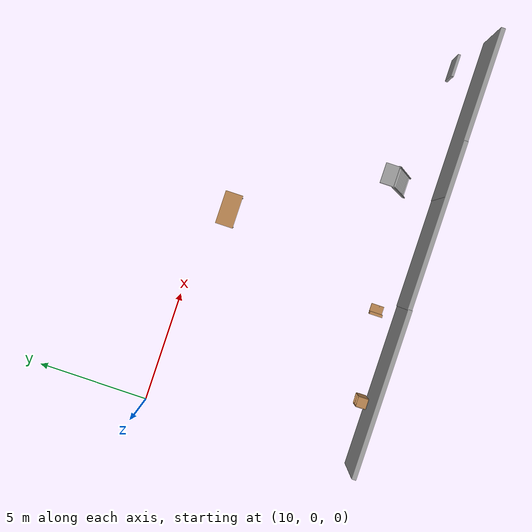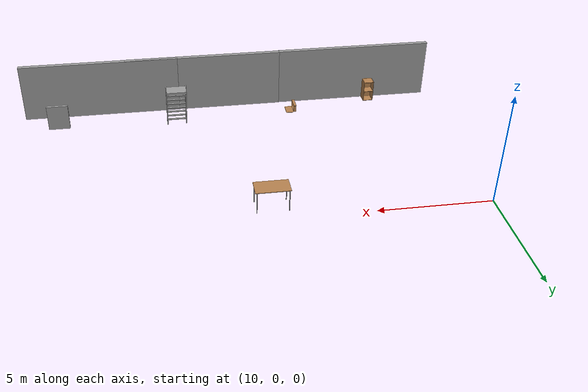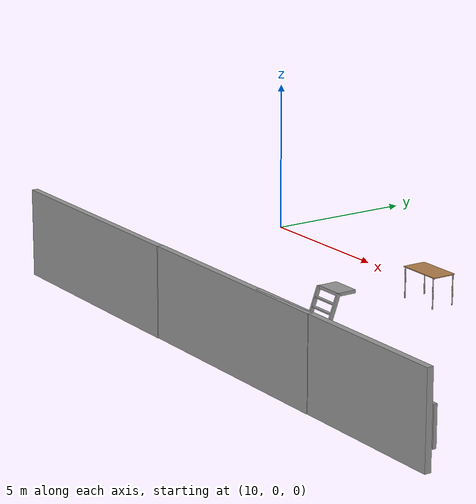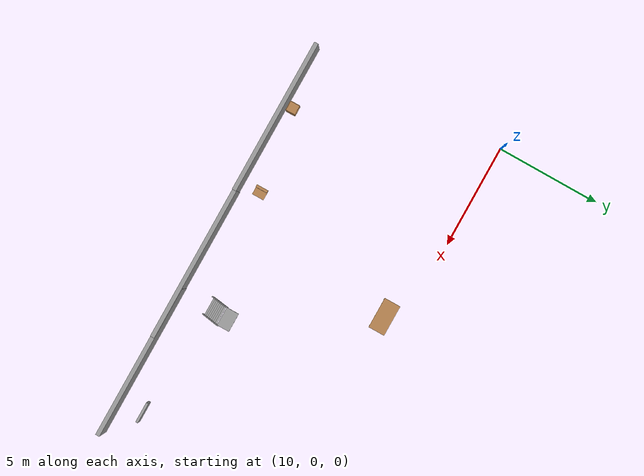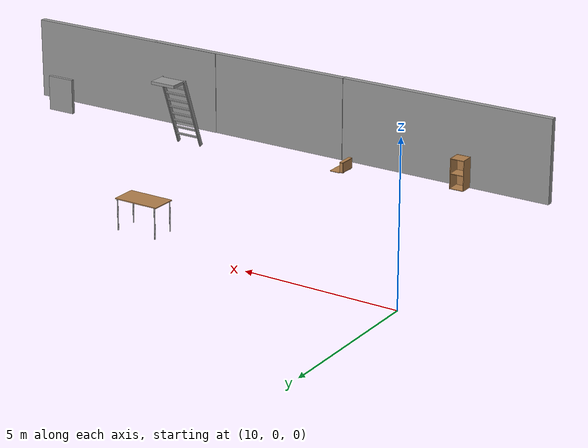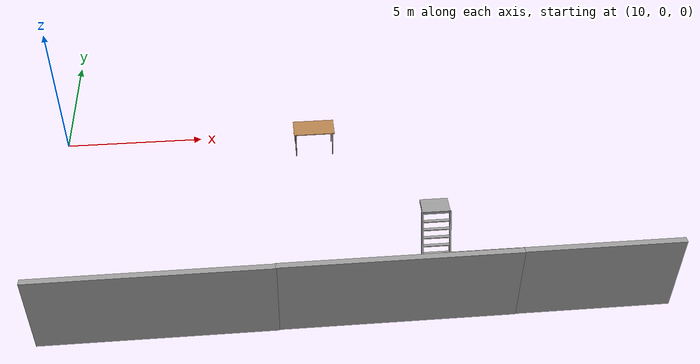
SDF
<sdf version="1.7">
 <world name="factory">
  <model name="ladder_70deg_0rails">
   <static>1</static>
   <link name="step0">
    <pose>0 0.097059 0.266667 0 -0 0</pose>
    <inertial>
     <mass>9.75482</mass>
     <inertia>
      <ixx>0.00957124</ixx>
      <iyy>0.65963</iyy>
      <izz>0.666842</izz>
      <ixy>0</ixy>
      <ixz>0</ixz>
      <iyz>0</iyz>
     </inertia>
    </inertial>
    <collision name="collision"><geometry><box><size>0.9 0.1016 0.0381</size></box></geometry></collision>
    <visual name="visual">
     <geometry><box><size>0.9 0.1016 0.0381</size></box></geometry>
     <material>
      <script>
       <uri>file:///usr/share/gazebo-11/media/materials/scripts/gazebo.material</uri>
       <name>Gazebo/Grey</name>
      </script>
     </material>
    </visual>
   </link>
   <link name="step1">
    <pose>0 0.194117 0.533333 0 -0 0</pose>
    <inertial>
     <mass>9.75482</mass>
     <inertia>
      <ixx>0.00957124</ixx>
      <iyy>0.65963</iyy>
      <izz>0.666842</izz>
      <ixy>0</ixy>
      <ixz>0</ixz>
      <iyz>0</iyz>
     </inertia>
    </inertial>
    <collision name="collision"><geometry><box><size>0.9 0.1016 0.0381</size></box></geometry></collision>
    <visual name="visual">
     <geometry><box><size>0.9 0.1016 0.0381</size></box></geometry>
     <material>
      <script>
       <uri>file:///usr/share/gazebo-11/media/materials/scripts/gazebo.material</uri>
       <name>Gazebo/Grey</name>
      </script>
     </material>
    </visual>
   </link>
   <link name="step2">
    <pose>0 0.291176 0.8 0 -0 0</pose>
    <inertial>
     <mass>9.75482</mass>
     <inertia>
      <ixx>0.00957124</ixx>
      <iyy>0.65963</iyy>
      <izz>0.666842</izz>
      <ixy>0</ixy>
      <ixz>0</ixz>
      <iyz>0</iyz>
     </inertia>
    </inertial>
    <collision name="collision"><geometry><box><size>0.9 0.1016 0.0381</size></box></geometry></collision>
    <visual name="visual">
     <geometry><box><size>0.9 0.1016 0.0381</size></box></geometry>
     <material>
      <script>
       <uri>file:///usr/share/gazebo-11/media/materials/scripts/gazebo.material</uri>
       <name>Gazebo/Grey</name>
      </script>
     </material>
    </visual>
   </link>
   <link name="step3">
    <pose>0 0.388235 1.06667 0 -0 0</pose>
    <inertial>
     <mass>9.75482</mass>
     <inertia>
      <ixx>0.00957124</ixx>
      <iyy>0.65963</iyy>
      <izz>0.666842</izz>
      <ixy>0</ixy>
      <ixz>0</ixz>
      <iyz>0</iyz>
     </inertia>
    </inertial>
    <collision name="collision"><geometry><box><size>0.9 0.1016 0.0381</size></box></geometry></collision>
    <visual name="visual">
     <geometry><box><size>0.9 0.1016 0.0381</size></box></geometry>
     <material>
      <script>
       <uri>file:///usr/share/gazebo-11/media/materials/scripts/gazebo.material</uri>
       <name>Gazebo/Grey</name>
      </script>
     </material>
    </visual>
   </link>
   <link name="step4">
    <pose>0 0.485294 1.33333 0 -0 0</pose>
    <inertial>
     <mass>9.75482</mass>
     <inertia>
      <ixx>0.00957124</ixx>
      <iyy>0.65963</iyy>
      <izz>0.666842</izz>
      <ixy>0</ixy>
      <ixz>0</ixz>
      <iyz>0</iyz>
     </inertia>
    </inertial>
    <collision name="collision"><geometry><box><size>0.9 0.1016 0.0381</size></box></geometry></collision>
    <visual name="visual">
     <geometry><box><size>0.9 0.1016 0.0381</size></box></geometry>
     <material>
      <script>
       <uri>file:///usr/share/gazebo-11/media/materials/scripts/gazebo.material</uri>
       <name>Gazebo/Grey</name>
      </script>
     </material>
    </visual>
   </link>
   <link name="step5">
    <pose>0 0.582352 1.6 0 -0 0</pose>
    <inertial>
     <mass>9.75482</mass>
     <inertia>
      <ixx>0.00957124</ixx>
      <iyy>0.65963</iyy>
      <izz>0.666842</izz>
      <ixy>0</ixy>
      <ixz>0</ixz>
      <iyz>0</iyz>
     </inertia>
    </inertial>
    <collision name="collision"><geometry><box><size>0.9 0.1016 0.0381</size></box></geometry></collision>
    <visual name="visual">
     <geometry><box><size>0.9 0.1016 0.0381</size></box></geometry>
     <material>
      <script>
       <uri>file:///usr/share/gazebo-11/media/materials/scripts/gazebo.material</uri>
       <name>Gazebo/Grey</name>
      </script>
     </material>
    </visual>
   </link>
   <link name="step6">
    <pose>0 0.679411 1.86667 0 -0 0</pose>
    <inertial>
     <mass>9.75482</mass>
     <inertia>
      <ixx>0.00957124</ixx>
      <iyy>0.65963</iyy>
      <izz>0.666842</izz>
      <ixy>0</ixy>
      <ixz>0</ixz>
      <iyz>0</iyz>
     </inertia>
    </inertial>
    <collision name="collision"><geometry><box><size>0.9 0.1016 0.0381</size></box></geometry></collision>
    <visual name="visual">
     <geometry><box><size>0.9 0.1016 0.0381</size></box></geometry>
     <material>
      <script>
       <uri>file:///usr/share/gazebo-11/media/materials/scripts/gazebo.material</uri>
       <name>Gazebo/Grey</name>
      </script>
     </material>
    </visual>
   </link>
   <link name="step7">
    <pose>0 0.77647 2.13333 0 -0 0</pose>
    <inertial>
     <mass>9.75482</mass>
     <inertia>
      <ixx>0.00957124</ixx>
      <iyy>0.65963</iyy>
      <izz>0.666842</izz>
      <ixy>0</ixy>
      <ixz>0</ixz>
      <iyz>0</iyz>
     </inertia>
    </inertial>
    <collision name="collision"><geometry><box><size>0.9 0.1016 0.0381</size></box></geometry></collision>
    <visual name="visual">
     <geometry><box><size>0.9 0.1016 0.0381</size></box></geometry>
     <material>
      <script>
       <uri>file:///usr/share/gazebo-11/media/materials/scripts/gazebo.material</uri>
       <name>Gazebo/Grey</name>
      </script>
     </material>
    </visual>
   </link>
   <link name="landing">
    <pose>0 1.17353 2.4 0 -0 0</pose>
    <inertial>
     <mass>57.6072</mass>
     <inertia><ixx>1.73518</ixx><iyy>3.89545</iyy><izz>5.6167</izz><ixy>0</ixy><ixz>0</ixz><iyz>0</iyz></inertia>
    </inertial>
    <collision name="collision"><geometry><box><size>0.9 0.6 0.1016</size></box></geometry></collision>
    <visual name="visual">
     <geometry><box><size>0.9 0.6 0.1016</size></box></geometry>
     <material>
      <script>
       <uri>file:///usr/share/gazebo-11/media/materials/scripts/gazebo.material</uri>
       <name>Gazebo/Grey</name>
      </script>
     </material>
    </visual>
   </link>
   <link name="left_side_wall">
    <pose>-0.45 0.436764 1.2 1.22173 -0 0</pose>
    <collision name="collision"><geometry><box><size>0.0508 2.63403 0.13</size></box></geometry></collision>
    <visual name="visual">
     <geometry><box><size>0.0508 2.63403 0.13</size></box></geometry>
     <material>
      <script>
       <uri>file:///usr/share/gazebo-11/media/materials/scripts/gazebo.material</uri>
       <name>Gazebo/Grey</name>
      </script>
     </material>
    </visual>
   </link>
   <link name="right_side_wall">
    <pose>0.45 0.436764 1.2 1.22173 -0 0</pose>
    <collision name="collision"><geometry><box><size>0.0508 2.63403 0.13</size></box></geometry></collision>
    <visual name="visual">
     <geometry><box><size>0.0508 2.63403 0.13</size></box></geometry>
     <material>
      <script>
       <uri>file:///usr/share/gazebo-11/media/materials/scripts/gazebo.material</uri>
       <name>Gazebo/Grey</name>
      </script>
     </material>
    </visual>
   </link>
   <static>1</static>
   <pose>22.7475 -8.13571 0 0 -0 0</pose>
  </model>
  <model name="grey_wall_clone_0">
   <static>1</static>
   <link name="link">
    <pose>0 0 1.4 0 -0 0</pose>
    <collision name="collision"><geometry><box><size>7.5 0.2 2.8</size></box></geometry></collision>
    <visual name="visual">
     <cast_shadows>0</cast_shadows>
     <geometry><box><size>7.5 0.2 2.8</size></box></geometry>
     <material>
      <script>
       <uri>model://grey_wall/materials/scripts</uri>
       <uri>model://grey_wall/materials/textures</uri>
       <name>vrc/grey_wall</name>
      </script>
     </material>
    </visual>
   </link>
   <static>1</static>
   <pose>13.8347 -9.52636 0 0 -0 0</pose>
  </model>
  <model name="grey_wall_clone_1">
   <static>1</static>
   <link name="link">
    <pose>0 0 1.4 0 -0 0</pose>
    <collision name="collision"><geometry><box><size>7.5 0.2 2.8</size></box></geometry></collision>
    <visual name="visual">
     <cast_shadows>0</cast_shadows>
     <geometry><box><size>7.5 0.2 2.8</size></box></geometry>
     <material>
      <script>
       <uri>model://grey_wall/materials/scripts</uri>
       <uri>model://grey_wall/materials/textures</uri>
       <name>vrc/grey_wall</name>
      </script>
     </material>
    </visual>
   </link>
   <static>1</static>
   <pose>21.3028 -9.50574 0 0 -0 0</pose>
  </model>
  <model name="grey_wall_clone_2">
   <static>1</static>
   <link name="link">
    <pose>0 0 1.4 0 -0 0</pose>
    <collision name="collision"><geometry><box><size>7.5 0.2 2.8</size></box></geometry></collision>
    <visual name="visual">
     <cast_shadows>0</cast_shadows>
     <geometry><box><size>7.5 0.2 2.8</size></box></geometry>
     <material>
      <script>
       <uri>model://grey_wall/materials/scripts</uri>
       <uri>model://grey_wall/materials/textures</uri>
       <name>vrc/grey_wall</name>
      </script>
     </material>
    </visual>
   </link>
   <static>1</static>
   <pose>26.2939 -9.49059 0 0 -0 0</pose>
  </model>
  <model name="unit_box">
   <pose>28.3607 -8.33653 0.613005 -1e-06 -0 0.000251</pose>
   <link name="link">
    <inertial>
     <mass>1</mass>
     <inertia>
      <ixx>0.166667</ixx>
      <ixy>0</ixy>
      <ixz>0</ixz>
      <iyy>0.166667</iyy>
      <iyz>0</iyz>
      <izz>0.166667</izz>
     </inertia>
    </inertial>
    <collision name="collision"><geometry><box><size>1 0.115738 1.22601</size></box></geometry></collision>
    <visual name="visual">
     <geometry><box><size>1 0.115738 1.22601</size></box></geometry>
     <material>
      <script>
       <name>Gazebo/Grey</name>
       <uri>file:///usr/share/gazebo-11/media/materials/scripts/gazebo.material</uri>
      </script>
     </material>
    </visual>
   </link>
  </model>
  <model name="cabinet">
   <static>1</static>
   <link name="cabinet_bottom_plate">
    <inertial>
     <pose>0 0 -1 0 -0 0</pose>
     <inertia><ixx>2.05</ixx><ixy>0</ixy><ixz>0</ixz><iyy>2.05</iyy><iyz>0</iyz><izz>2.05</izz></inertia>
     <mass>25</mass>
    </inertial>
    <collision name="cabinet_bottom_plate_geom">
     <pose>0 0 0.01 0 -0 0</pose>
     <geometry><box><size>0.45 0.45 0.02</size></box></geometry>
    </collision>
    <visual name="cabinet_bottom_plate_geom_visual">
     <pose>0 0 0.01 0 -0 0</pose>
     <geometry><box><size>0.45 0.45 0.02</size></box></geometry>
     <material>
      <script>
       <uri>file:///usr/share/gazebo-11/media/materials/scripts/gazebo.material</uri>
       <name>Gazebo/Wood</name>
      </script>
     </material>
    </visual>
    <collision name="cabinet_bottom_plate_geom_cabinet_back_plate">
     <pose>0.235 0 0.51 0 -0 0</pose>
     <geometry><box><size>0.02 0.45 1.02</size></box></geometry>
    </collision>
    <visual name="cabinet_bottom_plate_geom_cabinet_back_plate_visual">
     <pose>0.235 0 0.51 0 -0 0</pose>
     <geometry><box><size>0.02 0.45 1.02</size></box></geometry>
     <material>
      <script>
       <uri>file:///usr/share/gazebo-11/media/materials/scripts/gazebo.material</uri>
       <name>Gazebo/Wood</name>
      </script>
     </material>
    </visual>
    <collision name="cabinet_bottom_plate_geom_cabinet_left_plate">
     <pose>0 0.235 0.51 0 -0 0</pose>
     <geometry><box><size>0.45 0.02 1.02</size></box></geometry>
    </collision>
    <visual name="cabinet_bottom_plate_geom_cabinet_left_plate_visual">
     <pose>0 0.235 0.51 0 -0 0</pose>
     <geometry><box><size>0.45 0.02 1.02</size></box></geometry>
     <material>
      <script>
       <uri>file:///usr/share/gazebo-11/media/materials/scripts/gazebo.material</uri>
       <name>Gazebo/Wood</name>
      </script>
     </material>
    </visual>
    <collision name="cabinet_bottom_plate_geom_cabinet_middle_plate">
     <pose>0 0 0.51 0 -0 0</pose>
     <geometry><box><size>0.45 0.45 0.02</size></box></geometry>
    </collision>
    <visual name="cabinet_bottom_plate_geom_cabinet_middle_plate_visual">
     <pose>0 0 0.51 0 -0 0</pose>
     <geometry><box><size>0.45 0.45 0.02</size></box></geometry>
     <material>
      <script>
       <uri>file:///usr/share/gazebo-11/media/materials/scripts/gazebo.material</uri>
       <name>Gazebo/Wood</name>
      </script>
     </material>
    </visual>
    <collision name="cabinet_bottom_plate_geom_cabinet_right_plate">
     <pose>0 -0.235 0.51 0 -0 0</pose>
     <geometry><box><size>0.45 0.02 1.02</size></box></geometry>
    </collision>
    <visual name="cabinet_bottom_plate_geom_cabinet_right_plate_visual">
     <pose>0 -0.235 0.51 0 -0 0</pose>
     <geometry><box><size>0.45 0.02 1.02</size></box></geometry>
     <material>
      <script>
       <uri>file:///usr/share/gazebo-11/media/materials/scripts/gazebo.material</uri>
       <name>Gazebo/Wood</name>
      </script>
     </material>
    </visual>
    <collision name="cabinet_bottom_plate_geom_cabinet_top_plate">
     <pose>0 0 1.01 0 -0 0</pose>
     <geometry><box><size>0.45 0.45 0.02</size></box></geometry>
    </collision>
    <visual name="cabinet_bottom_plate_geom_cabinet_top_plate_visual">
     <pose>0 0 1.01 0 -0 0</pose>
     <geometry><box><size>0.45 0.45 0.02</size></box></geometry>
     <material>
      <script>
       <uri>file:///usr/share/gazebo-11/media/materials/scripts/gazebo.material</uri>
       <name>Gazebo/Wood</name>
      </script>
     </material>
    </visual>
   </link>
   <static>1</static>
   <pose>13.0394 -9.13497 0.037072 0 0 -1.55676</pose>
  </model>
  <model name="wooden_case">
   <link name="base">
    <pose>0 0 0.024 0 -0 0</pose>
    <inertial>
     <pose>-0.022184 0 0.171592 0 -0 0</pose>
     <mass>3.96264</mass>
     <inertia>
      <ixx>0.213536</ixx>
      <ixy>0</ixy>
      <ixz>0.000779377</ixz>
      <iyy>0.0708943</iyy>
      <iyz>0</iyz>
      <izz>0.154604</izz>
     </inertia>
    </inertial>
    <collision name="collision_back">
     <pose>-0.053975 0 0.1778 0 -0 0</pose>
     <geometry><box><size>0.01905 0.5461 0.3175</size></box></geometry>
     <surface>
      <contact>
       <poissons_ratio>0.347</poissons_ratio>
       <elastic_modulus>8.8e+09</elastic_modulus>
       <ode><kp>100000</kp><kd>100</kd><max_vel>100</max_vel><min_depth>0.001</min_depth></ode>
      </contact>
      <friction>
       <torsional>
        <coefficient>1</coefficient>
        <use_patch_radius>0</use_patch_radius>
        <surface_radius>0.01</surface_radius>
       </torsional>
      </friction>
     </surface>
    </collision>
    <visual name="visual_back">
     <pose>-0.053975 0 0.1778 0 -0 0</pose>
     <geometry><box><size>0.01905 0.5461 0.3175</size></box></geometry>
     <material>
      <script>
       <uri>file:///usr/share/gazebo-11/media/materials/scripts/gazebo.material</uri>
       <name>Gazebo/Wood</name>
      </script>
     </material>
    </visual>
    <collision name="collision_bottom">
     <pose>0 0 0.009525 0 -0 0</pose>
     <geometry><box><size>0.127 0.5842 0.01905</size></box></geometry>
     <surface>
      <contact>
       <poissons_ratio>0.347</poissons_ratio>
       <elastic_modulus>8.8e+09</elastic_modulus>
       <ode><kp>100000</kp><kd>100</kd><max_vel>100</max_vel><min_depth>0.001</min_depth></ode>
      </contact>
      <friction>
       <torsional>
        <coefficient>1</coefficient>
        <use_patch_radius>0</use_patch_radius>
        <surface_radius>0.01</surface_radius>
       </torsional>
      </friction>
     </surface>
    </collision>
    <visual name="visual_bottom">
     <pose>0 0 0.009525 0 -0 0</pose>
     <geometry><box><size>0.127 0.5842 0.01905</size></box></geometry>
     <material>
      <script>
       <uri>file:///usr/share/gazebo-11/media/materials/scripts/gazebo.material</uri>
       <name>Gazebo/Wood</name>
      </script>
     </material>
    </visual>
    <collision name="collision_top">
     <pose>0 0 0.346075 0 -0 0</pose>
     <geometry><box><size>0.127 0.5842 0.01905</size></box></geometry>
     <surface>
      <contact>
       <poissons_ratio>0.347</poissons_ratio>
       <elastic_modulus>8.8e+09</elastic_modulus>
       <ode><kp>100000</kp><kd>100</kd><max_vel>100</max_vel><min_depth>0.001</min_depth></ode>
      </contact>
      <friction>
       <torsional>
        <coefficient>1</coefficient>
        <use_patch_radius>0</use_patch_radius>
        <surface_radius>0.01</surface_radius>
       </torsional>
      </friction>
     </surface>
    </collision>
    <visual name="visual_top">
     <pose>0 0 0.346075 0 -0 0</pose>
     <geometry><box><size>0.127 0.5842 0.01905</size></box></geometry>
     <material>
      <script>
       <uri>file:///usr/share/gazebo-11/media/materials/scripts/gazebo.material</uri>
       <name>Gazebo/Wood</name>
      </script>
     </material>
    </visual>
    <collision name="collision_left">
     <pose>0 -0.282575 0.1778 0 -0 0</pose>
     <geometry><box><size>0.127 0.01905 0.3175</size></box></geometry>
     <surface>
      <contact>
       <poissons_ratio>0.347</poissons_ratio>
       <elastic_modulus>8.8e+09</elastic_modulus>
       <ode><kp>100000</kp><kd>100</kd><max_vel>100</max_vel><min_depth>0.001</min_depth></ode>
      </contact>
      <friction>
       <torsional>
        <coefficient>1</coefficient>
        <use_patch_radius>0</use_patch_radius>
        <surface_radius>0.01</surface_radius>
       </torsional>
      </friction>
     </surface>
    </collision>
    <visual name="visual_left">
     <pose>0 -0.282575 0.1778 0 -0 0</pose>
     <geometry><box><size>0.127 0.01905 0.3175</size></box></geometry>
     <material>
      <script>
       <uri>file:///usr/share/gazebo-11/media/materials/scripts/gazebo.material</uri>
       <name>Gazebo/Wood</name>
      </script>
     </material>
    </visual>
    <collision name="collision_right">
     <pose>0 0.282575 0.1778 0 -0 0</pose>
     <geometry><box><size>0.127 0.01905 0.3175</size></box></geometry>
     <surface>
      <contact>
       <poissons_ratio>0.347</poissons_ratio>
       <elastic_modulus>8.8e+09</elastic_modulus>
       <ode><kp>100000</kp><kd>100</kd><max_vel>100</max_vel><min_depth>0.001</min_depth></ode>
      </contact>
      <friction>
       <torsional>
        <coefficient>1</coefficient>
        <use_patch_radius>0</use_patch_radius>
        <surface_radius>0.01</surface_radius>
       </torsional>
      </friction>
     </surface>
    </collision>
    <visual name="visual_right">
     <pose>0 0.282575 0.1778 0 -0 0</pose>
     <geometry><box><size>0.127 0.01905 0.3175</size></box></geometry>
     <material>
      <script>
       <uri>file:///usr/share/gazebo-11/media/materials/scripts/gazebo.material</uri>
       <name>Gazebo/Wood</name>
      </script>
     </material>
    </visual>
    <collision name="collision_block_left">
     <pose>0.0095 -0.2151 -0.012 0 -0 0</pose>
     <geometry><box><size>0.108 0.05 0.024</size></box></geometry>
     <surface>
      <contact>
       <poissons_ratio>0.347</poissons_ratio>
       <elastic_modulus>8.8e+09</elastic_modulus>
       <ode><kp>100000</kp><kd>100</kd><max_vel>100</max_vel><min_depth>0.001</min_depth></ode>
      </contact>
      <friction>
       <torsional>
        <coefficient>1</coefficient>
        <use_patch_radius>0</use_patch_radius>
        <surface_radius>0.01</surface_radius>
       </torsional>
      </friction>
     </surface>
    </collision>
    <visual name="visual_block_left">
     <pose>0.0095 -0.2151 -0.012 0 -0 0</pose>
     <geometry><box><size>0.108 0.05 0.024</size></box></geometry>
     <material>
      <script>
       <uri>file:///usr/share/gazebo-11/media/materials/scripts/gazebo.material</uri>
       <name>Gazebo/Wood</name>
      </script>
     </material>
    </visual>
    <collision name="collision_block_right">
     <pose>0.0095 0.2151 -0.012 0 -0 0</pose>
     <geometry><box><size>0.108 0.05 0.024</size></box></geometry>
     <surface>
      <contact>
       <poissons_ratio>0.347</poissons_ratio>
       <elastic_modulus>8.8e+09</elastic_modulus>
       <ode><kp>100000</kp><kd>100</kd><max_vel>100</max_vel><min_depth>0.001</min_depth></ode>
      </contact>
      <friction>
       <torsional>
        <coefficient>1</coefficient>
        <use_patch_radius>0</use_patch_radius>
        <surface_radius>0.01</surface_radius>
       </torsional>
      </friction>
     </surface>
    </collision>
    <visual name="visual_block_right">
     <pose>0.0095 0.2151 -0.012 0 -0 0</pose>
     <geometry><box><size>0.108 0.05 0.024</size></box></geometry>
     <material>
      <script>
       <uri>file:///usr/share/gazebo-11/media/materials/scripts/gazebo.material</uri>
       <name>Gazebo/Wood</name>
      </script>
     </material>
    </visual>
   </link>
   <link name="lid">
    <pose>0.243775 0 0.009525 0 -0 0</pose>
    <inertial>
     <mass>1.97874</mass>
     <inertia>
      <ixx>0.0563367</ixx>
      <ixy>0</ixy>
      <ixz>0</ixz>
      <iyy>0.020911</iyy>
      <iyz>0</iyz>
      <izz>0.0771281</izz>
     </inertia>
    </inertial>
    <collision name="collision">
     <geometry><box><size>0.3556 0.5842 0.01905</size></box></geometry>
     <surface>
      <contact>
       <poissons_ratio>0.347</poissons_ratio>
       <elastic_modulus>8.8e+09</elastic_modulus>
       <ode><kp>100000</kp><kd>100</kd><max_vel>100</max_vel><min_depth>0.001</min_depth></ode>
      </contact>
      <friction>
       <torsional>
        <coefficient>1</coefficient>
        <use_patch_radius>0</use_patch_radius>
        <surface_radius>0.01</surface_radius>
       </torsional>
      </friction>
     </surface>
    </collision>
    <visual name="visual">
     <geometry><box><size>0.3556 0.5842 0.01905</size></box></geometry>
     <material>
      <script>
       <uri>file:///usr/share/gazebo-11/media/materials/scripts/gazebo.material</uri>
       <name>Gazebo/Wood</name>
      </script>
     </material>
    </visual>
    <visual name="tee_nut_1">
     <pose>0.122 -0.216 0 0 -0 0</pose>
     <geometry><cylinder><radius>0.00635</radius><length>0.0192405</length></cylinder></geometry>
     <material>
      <script>
       <uri>file:///usr/share/gazebo-11/media/materials/scripts/gazebo.material</uri>
       <name>Gazebo/Grey</name>
      </script>
     </material>
    </visual>
    <visual name="tee_nut_2">
     <pose>0.122 -0.088 0 0 -0 0</pose>
     <geometry><cylinder><radius>0.00635</radius><length>0.0192405</length></cylinder></geometry>
     <material>
      <script>
       <uri>file:///usr/share/gazebo-11/media/materials/scripts/gazebo.material</uri>
       <name>Gazebo/Grey</name>
      </script>
     </material>
    </visual>
    <visual name="tee_nut_3">
     <pose>0.122 0.088 0 0 -0 0</pose>
     <geometry><cylinder><radius>0.00635</radius><length>0.0192405</length></cylinder></geometry>
     <material>
      <script>
       <uri>file:///usr/share/gazebo-11/media/materials/scripts/gazebo.material</uri>
       <name>Gazebo/Grey</name>
      </script>
     </material>
    </visual>
    <visual name="tee_nut_4">
     <pose>0.122 0.216 0 0 -0 0</pose>
     <geometry><cylinder><radius>0.00635</radius><length>0.0192405</length></cylinder></geometry>
     <material>
      <script>
       <uri>file:///usr/share/gazebo-11/media/materials/scripts/gazebo.material</uri>
       <name>Gazebo/Grey</name>
      </script>
     </material>
    </visual>
   </link>
   <joint name="lid_hinge" type="revolute">
    <pose>-0.1778 0 0.01905 0 -0 0</pose>
    <parent>base</parent>
    <child>lid</child>
    <axis>
     <xyz>0 1 0</xyz>
     <limit><upper>0.523599</upper><lower>-1.5708</lower></limit>
     <dynamics><spring_reference>0</spring_reference><spring_stiffness>0</spring_stiffness></dynamics>
    </axis>
   </joint>
   <pose>16.9031 -8.59916 -0.001057 0 -0.00043 -0.000113</pose>
  </model>
  <model name="table">
   <static>1</static>
   <link name="link">
    <collision name="surface">
     <pose>0 0 1 0 -0 0</pose>
     <geometry><box><size>1.5 0.8 0.03</size></box></geometry>
     <surface><friction><ode><mu>0.6</mu><mu2>0.6</mu2></ode></friction></surface>
    </collision>
    <visual name="visual1">
     <pose>0 0 1 0 -0 0</pose>
     <geometry><box><size>1.5 0.8 0.03</size></box></geometry>
     <material>
      <script>
       <uri>file:///usr/share/gazebo-11/media/materials/scripts/gazebo.material</uri>
       <name>Gazebo/Wood</name>
      </script>
     </material>
    </visual>
    <collision name="front_left_leg">
     <pose>0.68 0.38 0.5 0 -0 0</pose>
     <geometry><cylinder><radius>0.02</radius><length>1</length></cylinder></geometry>
    </collision>
    <visual name="front_left_leg">
     <pose>0.68 0.38 0.5 0 -0 0</pose>
     <geometry><cylinder><radius>0.02</radius><length>1</length></cylinder></geometry>
     <material>
      <script>
       <uri>file:///usr/share/gazebo-11/media/materials/scripts/gazebo.material</uri>
       <name>Gazebo/Grey</name>
      </script>
     </material>
    </visual>
    <collision name="front_right_leg">
     <pose>0.68 -0.38 0.5 0 -0 0</pose>
     <geometry><cylinder><radius>0.02</radius><length>1</length></cylinder></geometry>
    </collision>
    <visual name="front_right_leg">
     <pose>0.68 -0.38 0.5 0 -0 0</pose>
     <geometry><cylinder><radius>0.02</radius><length>1</length></cylinder></geometry>
     <material>
      <script>
       <uri>file:///usr/share/gazebo-11/media/materials/scripts/gazebo.material</uri>
       <name>Gazebo/Grey</name>
      </script>
     </material>
    </visual>
    <collision name="back_right_leg">
     <pose>-0.68 -0.38 0.5 0 -0 0</pose>
     <geometry><cylinder><radius>0.02</radius><length>1</length></cylinder></geometry>
    </collision>
    <visual name="back_right_leg">
     <pose>-0.68 -0.38 0.5 0 -0 0</pose>
     <geometry><cylinder><radius>0.02</radius><length>1</length></cylinder></geometry>
     <material>
      <script>
       <uri>file:///usr/share/gazebo-11/media/materials/scripts/gazebo.material</uri>
       <name>Gazebo/Grey</name>
      </script>
     </material>
    </visual>
    <collision name="back_left_leg">
     <pose>-0.68 0.38 0.5 0 -0 0</pose>
     <geometry><cylinder><radius>0.02</radius><length>1</length></cylinder></geometry>
    </collision>
    <visual name="back_left_leg">
     <pose>-0.68 0.38 0.5 0 -0 0</pose>
     <geometry><cylinder><radius>0.02</radius><length>1</length></cylinder></geometry>
     <material>
      <script>
       <uri>file:///usr/share/gazebo-11/media/materials/scripts/gazebo.material</uri>
       <name>Gazebo/Grey</name>
      </script>
     </material>
    </visual>
   </link>
   <static>1</static>
   <pose>19.256 -0.907717 0 0 -0 0</pose>
  </model>
 </world>
</sdf>
